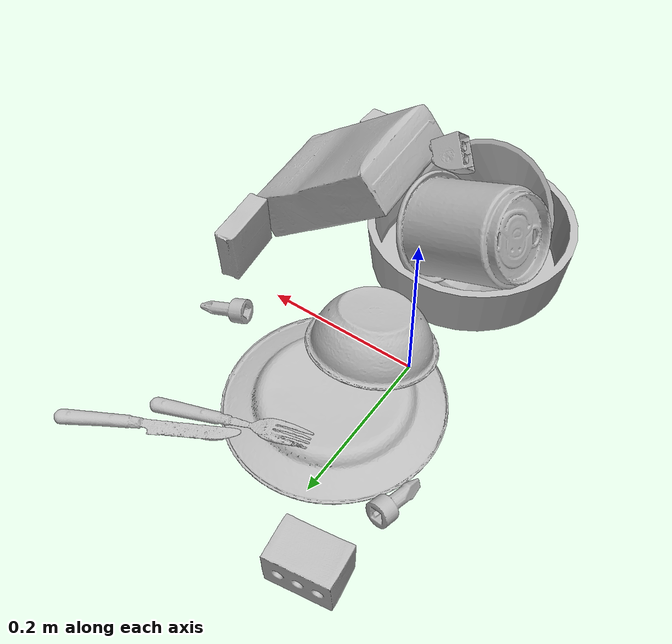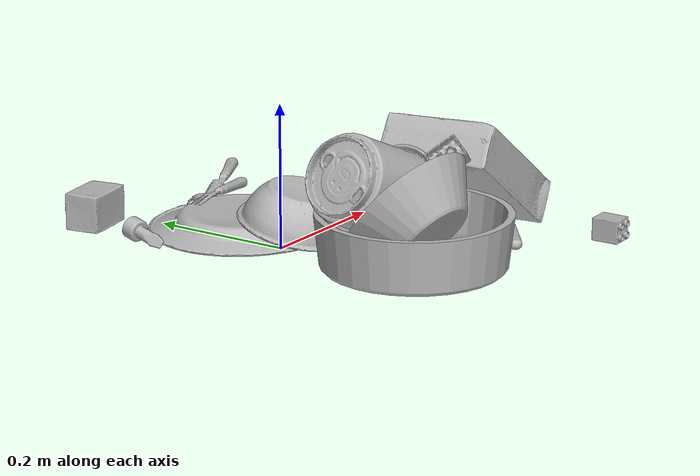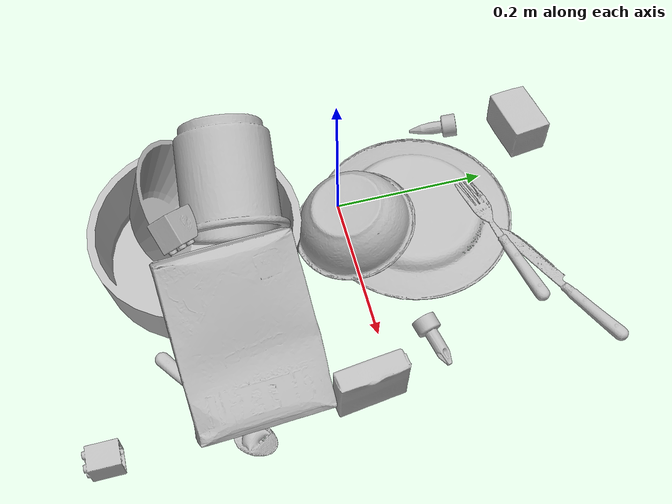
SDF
<sdf version="1.4">
  <world name="default">
    <light name="light1" type="point">
      <pose>0 0 1 0 0 0</pose>
      <diffuse>3 3 3 1</diffuse>
      <specular>3 3 3 1</specular>
    </light>
    <light name="light2" type="point">
      <pose>0 0.5 2 0 0 0</pose>
      <diffuse>1 1 1 1</diffuse>
      <specular>1 1 1 1</specular>
    </light>
    <light name="light3" type="point">
      <pose>0 0.5 2 0 0 0</pose>
      <diffuse>3 3 3 1</diffuse>
      <specular>3 3 3 1</specular>
    </light>
    <scene>
      <ambient>0.7 0.7 0.7</ambient>
    </scene>
    <model name="plate1">
      <link name="link_plate1">
        <collision name="default">
          <geometry>
            <mesh>
              <uri>model://plate/collision_meshes/collision.obj</uri>
              <scale>1.0 1.0 1.0</scale>
            </mesh>
          </geometry>
          <surface>
            <friction>
              <ode>
                <mu>0.5</mu>
                <mu2>0.5</mu2>
              </ode>
            </friction>
          <contact>
        <ode>
            <max_vel>0</max_vel>
            <min_depth>0.0001</min_depth>
            <kp>1e8</kp>
        </ode>
    </contact></surface>
        </collision>
        <visual name="default">
          <geometry>
            <mesh>
              <uri>model://plate/visual_meshes/visual.dae</uri>
              <scale>1.0 1.0 1.0</scale>
            </mesh>
          </geometry>
        </visual>
        <inertial>
          <mass>0.20059238374233246</mass>
          <pose>-0.0006044621695764363 0.00027825910365208983 -0.001056200242601335 0.002218800652723057 -0.0032254723094637602 0.45260588699646775</pose>
          <inertia>
            <ixx>0.00093837525</ixx>
            <iyy>0.0009294</iyy>
            <izz>0.0018353215</izz>
            <ixy>0</ixy>
            <ixz>0</ixz>
            <iyz>0</iyz>
          </inertia>
        </inertial>
      </link>
      <pose>0.04182807728648186 0.09362383931875229 0.013448403216898441 3.141423309416076 -0.0031622510503943914 2.799403509779532</pose>
    </model>
    <model name="plate2">
      <link name="link_plate2">
        <collision name="default">
          <geometry>
            <mesh>
              <uri>model://pan_tefal/collision_meshes/collision.obj</uri>
              <scale>1.0 1.0 1.0</scale>
            </mesh>
          </geometry>
          <surface>
            <friction>
              <ode>
                <mu>0.5</mu>
                <mu2>0.5</mu2>
              </ode>
            </friction>
          <contact>
        <ode>
            <max_vel>0</max_vel>
            <min_depth>0.0001</min_depth>
            <kp>1e8</kp>
        </ode>
    </contact></surface>
        </collision>
        <visual name="default">
          <geometry>
            <mesh>
              <uri>model://pan_tefal/visual_meshes/visual.dae</uri>
              <scale>1.0 1.0 1.0</scale>
            </mesh>
          </geometry>
        </visual>
        <inertial>
          <mass>0.5801199674606323</mass>
          <pose>-0.00018002555589191616 3.279062366345897e-05 -0.008514936082065105 0.0008190222895173471 -0.0003301392673675887 -0.3318501085377774</pose>
          <inertia>
            <ixx>0.00400454</ixx>
            <iyy>0.004030358</iyy>
            <izz>0.0073715877</izz>
            <ixy>0</ixy>
            <ixz>0</ixz>
            <iyz>0</iyz>
          </inertia>
        </inertial>
      </link>
      <pose>0.0331190824508667 -0.19128473103046417 0.038050368428230286 -2.477377125782189e-06 -4.6458421439802845e-06 1.159804381565598</pose>
    </model>
    <model name="bowl1">
      <link name="link_bowl1">
        <collision name="default">
          <geometry>
            <mesh>
              <uri>model://bowl/collision_meshes/collision.obj</uri>
              <scale>1.0 1.0 1.0</scale>
            </mesh>
          </geometry>
          <surface>
            <friction>
              <ode>
                <mu>0.5</mu>
                <mu2>0.5</mu2>
              </ode>
            </friction>
          <contact>
        <ode>
            <max_vel>0</max_vel>
            <min_depth>0.0001</min_depth>
            <kp>1e8</kp>
        </ode>
    </contact></surface>
        </collision>
        <visual name="default">
          <geometry>
            <mesh>
              <uri>model://bowl/visual_meshes/visual.dae</uri>
              <scale>1.0 1.0 1.0</scale>
            </mesh>
          </geometry>
        </visual>
        <inertial>
          <mass>0.055578216910362244</mass>
          <pose>0.00020445502013899386 -0.0010302060982212424 -0.000804265437182039 -0.015764048263850368 0.014546844804774466 0.7140432473852318</pose>
          <inertia>
            <ixx>0.00012766755</ixx>
            <iyy>0.000124815</iyy>
            <izz>0.00021478078</izz>
            <ixy>0</ixy>
            <ixz>0</ixz>
            <iyz>0</iyz>
          </inertia>
        </inertial>
      </link>
      <pose>0.04787202179431915 0.004264296032488346 0.044411659240722656 2.9932645385161667 -0.17039773320746995 2.4080824467276836</pose>
    </model>
    <model name="bowl2">
      <link name="link_bowl2">
        <collision name="default">
          <geometry>
            <mesh>
              <uri>model://bowl_a/collision_meshes/collision.obj</uri>
              <scale>1.0 1.0 1.0</scale>
            </mesh>
          </geometry>
          <surface>
            <friction>
              <ode>
                <mu>0.5</mu>
                <mu2>0.5</mu2>
              </ode>
            </friction>
          <contact>
        <ode>
            <max_vel>0</max_vel>
            <min_depth>0.0001</min_depth>
            <kp>1e8</kp>
        </ode>
    </contact></surface>
        </collision>
        <visual name="default">
          <geometry>
            <mesh>
              <uri>model://bowl_a/visual_meshes/visual.dae</uri>
              <scale>1.0 1.0 1.0</scale>
            </mesh>
          </geometry>
        </visual>
        <inertial>
          <mass>0.31475314497947693</mass>
          <pose>0.00027867438620887697 4.730821092380211e-05 -0.0013765294570475817 -0.0009805369688078041 -0.0010938258688624044 -0.19123886294168949</pose>
          <inertia>
            <ixx>0.00089611666</ixx>
            <iyy>0.00090161816</iyy>
            <izz>0.0015937777</izz>
            <ixy>0</ixy>
            <ixz>0</ixz>
            <iyz>0</iyz>
          </inertia>
        </inertial>
      </link>
      <pose>0.019688410684466362 -0.20779991149902344 0.07076812535524368 -0.5611053274044023 0.7564029324080831 0.702711999862798</pose>
    </model>
    <model name="silverware1">
      <link name="link_silverware1">
        <collision name="default">
          <geometry>
            <mesh>
              <uri>model://spoon/collision_meshes/collision.obj</uri>
              <scale>1.0 1.0 1.0</scale>
            </mesh>
          </geometry>
          <surface>
            <friction>
              <ode>
                <mu>0.5</mu>
                <mu2>0.5</mu2>
              </ode>
            </friction>
          <contact>
        <ode>
            <max_vel>0</max_vel>
            <min_depth>0.0001</min_depth>
            <kp>1e8</kp>
        </ode>
    </contact></surface>
        </collision>
        <visual name="default">
          <geometry>
            <mesh>
              <uri>model://spoon/visual_meshes/visual.dae</uri>
              <scale>1.0 1.0 1.0</scale>
            </mesh>
          </geometry>
        </visual>
        <inertial>
          <mass>0.019504988566040993</mass>
          <pose>-0.005526313092559576 -0.0016034174477681518 -0.0007271654321812093 0.03521671064592188 -0.039065845080026425 0.006150613244710899</pose>
          <inertia>
            <ixx>1.0848988e-06</ixx>
            <iyy>7.421582e-05</iyy>
            <izz>7.4750846e-05</izz>
            <ixy>0</ixy>
            <ixz>0</ixz>
            <iyz>0</iyz>
          </inertia>
        </inertial>
      </link>
      <pose>0.24387401342391968 -0.21116666495800018 0.008380514569580555 -0.07115483380426597 0.02568442582227173 0.5993512184812075</pose>
    </model>
    <model name="box1">
      <link name="link_box1">
        <collision name="default">
          <geometry>
            <mesh>
              <uri>model://cracker_box/collision_meshes/collision.obj</uri>
              <scale>1.0 1.0 1.0</scale>
            </mesh>
          </geometry>
          <surface>
            <friction>
              <ode>
                <mu>0.5</mu>
                <mu2>0.5</mu2>
              </ode>
            </friction>
          <contact>
        <ode>
            <max_vel>0</max_vel>
            <min_depth>0.0001</min_depth>
            <kp>1e8</kp>
        </ode>
    </contact></surface>
        </collision>
        <visual name="default">
          <geometry>
            <mesh>
              <uri>model://cracker_box/visual_meshes/visual.dae</uri>
              <scale>1.0 1.0 1.0</scale>
            </mesh>
          </geometry>
        </visual>
        <inertial>
          <mass>2.5078790187835693</mass>
          <pose>0.0009464150061830878 0.00025434247800149024 -0.0017029535956680775 -0.00031620768203149627 -0.01110648960041945 0.002546794303792924</pose>
          <inertia>
            <ixx>0.0063789245</ixx>
            <iyy>0.010532858</iyy>
            <izz>0.015031353</izz>
            <ixy>0</ixy>
            <ixz>0</ixz>
            <iyz>0</iyz>
          </inertia>
        </inertial>
      </link>
      <pose>0.20618818700313568 -0.16290907561779022 0.09056717902421951 0.034334194497467656 -0.6063919346163048 -3.091261780785426</pose>
    </model>
    <model name="box2">
      <link name="link_box2">
        <collision name="default">
          <geometry>
            <mesh>
              <uri>model://gelatin_box/collision_meshes/collision.obj</uri>
              <scale>1.0 1.0 1.0</scale>
            </mesh>
          </geometry>
          <surface>
            <friction>
              <ode>
                <mu>0.5</mu>
                <mu2>0.5</mu2>
              </ode>
            </friction>
          <contact>
        <ode>
            <max_vel>0</max_vel>
            <min_depth>0.0001</min_depth>
            <kp>1e8</kp>
        </ode>
    </contact></surface>
        </collision>
        <visual name="default">
          <geometry>
            <mesh>
              <uri>model://gelatin_box/visual_meshes/visual.dae</uri>
              <scale>1.0 1.0 1.0</scale>
            </mesh>
          </geometry>
        </visual>
        <inertial>
          <mass>0.1847851723432541</mass>
          <pose>0.0004319618456065655 0.00011156872642459348 -0.0003640321083366871 -0.001050372098056681 -0.004755818221834168 0.016440563197305347</pose>
          <inertia>
            <ixx>0.00013044327</ixx>
            <iyy>9.317494e-05</iyy>
            <izz>0.0001985637</izz>
            <ixy>0</ixy>
            <ixz>0</ixz>
            <iyz>0</iyz>
          </inertia>
        </inertial>
      </link>
      <pose>0.27800536155700684 -0.03132499381899834 0.03644856810569763 2.296338073834495 -1.5392901111720418 0.9817562059845771</pose>
    </model>
    <model name="cup1">
      <link name="link_cup1">
        <collision name="default">
          <geometry>
            <mesh>
              <uri>model://d_cups/collision_meshes/collision.obj</uri>
              <scale>2.0 2.0 2.0</scale>
            </mesh>
          </geometry>
          <surface>
            <friction>
              <ode>
                <mu>0.5</mu>
                <mu2>0.5</mu2>
              </ode>
            </friction>
          <contact>
        <ode>
            <max_vel>0</max_vel>
            <min_depth>0.0001</min_depth>
            <kp>1e8</kp>
        </ode>
    </contact></surface>
        </collision>
        <visual name="default">
          <geometry>
            <mesh>
              <uri>model://d_cups/visual_meshes/visual.dae</uri>
              <scale>2.0 2.0 2.0</scale>
            </mesh>
          </geometry>
        </visual>
        <inertial>
          <mass>0.47328615188598633</mass>
          <pose>0.0016136143822222948 0.0038234798703342676 -0.004533303435891867 0.24012870248045765 -0.247092443015796 0.5942312682521343</pose>
          <inertia>
            <ixx>0.0015850074</ixx>
            <iyy>0.0015804201</iyy>
            <izz>0.0014347013</izz>
            <ixy>0</ixy>
            <ixz>0</ixz>
            <iyz>0</iyz>
          </inertia>
        </inertial>
      </link>
      <pose>0.0008873074548318982 -0.14047014713287354 0.10991354286670685 2.0074541395619816 0.07771387976262842 1.5027533170564553</pose>
    </model>
    <model name="silverware2">
      <link name="link_silverware2">
        <collision name="default">
          <geometry>
            <mesh>
              <uri>model://knife/collision_meshes/collision.obj</uri>
              <scale>1.0 1.0 1.0</scale>
            </mesh>
          </geometry>
          <surface>
            <friction>
              <ode>
                <mu>0.5</mu>
                <mu2>0.5</mu2>
              </ode>
            </friction>
          <contact>
        <ode>
            <max_vel>0</max_vel>
            <min_depth>0.0001</min_depth>
            <kp>1e8</kp>
        </ode>
    </contact></surface>
        </collision>
        <visual name="default">
          <geometry>
            <mesh>
              <uri>model://knife/visual_meshes/visual.dae</uri>
              <scale>1.0 1.0 1.0</scale>
            </mesh>
          </geometry>
        </visual>
        <inertial>
          <mass>0.03430156037211418</mass>
          <pose>-0.02378525398671627 0.0015275129117071629 5.062017953605391e-05 0.07305950900181668 0.01724842494985857 -0.007409825116106198</pose>
          <inertia>
            <ixx>9.736174e-07</ixx>
            <iyy>0.00013178105</iyy>
            <izz>0.00013209462</izz>
            <ixy>0</ixy>
            <ixz>0</ixz>
            <iyz>0</iyz>
          </inertia>
        </inertial>
      </link>
      <pose>0.19127263128757477 0.244649738073349 0.009434746578335762 0.025159085757158868 -0.031145601803400414 -2.661043300352022</pose>
    </model>
    <model name="silverware3">
      <link name="link_silverware3">
        <collision name="default">
          <geometry>
            <mesh>
              <uri>model://fork/collision_meshes/collision.obj</uri>
              <scale>1.0 1.0 1.0</scale>
            </mesh>
          </geometry>
          <surface>
            <friction>
              <ode>
                <mu>0.5</mu>
                <mu2>0.5</mu2>
              </ode>
            </friction>
          <contact>
        <ode>
            <max_vel>0</max_vel>
            <min_depth>0.0001</min_depth>
            <kp>1e8</kp>
        </ode>
    </contact></surface>
        </collision>
        <visual name="default">
          <geometry>
            <mesh>
              <uri>model://fork/visual_meshes/visual.dae</uri>
              <scale>1.0 1.0 1.0</scale>
            </mesh>
          </geometry>
        </visual>
        <inertial>
          <mass>0.014111565425992012</mass>
          <pose>-0.02957005426287651 0.0004658825055230409 0.00032188615296036005 -0.01355195006397287 -0.010977841645129428 0.014453906946454091</pose>
          <inertia>
            <ixx>4.9469025e-07</ixx>
            <iyy>3.684124e-05</iyy>
            <izz>3.7062495e-05</izz>
            <ixy>0</ixy>
            <ixz>0</ixz>
            <iyz>0</iyz>
          </inertia>
        </inertial>
      </link>
      <pose>0.11645994335412979 0.19077061116695404 0.020131992176175117 -3.070167380198738 -0.14673095002893966 -2.8600131947789884</pose>
    </model>
    <model name="toy1">
      <link name="link_toy1">
        <collision name="default">
          <geometry>
            <mesh>
              <uri>model://b_lego_duplo/collision_meshes/collision.obj</uri>
              <scale>1.0 1.0 1.0</scale>
            </mesh>
          </geometry>
          <surface>
            <friction>
              <ode>
                <mu>0.5</mu>
                <mu2>0.5</mu2>
              </ode>
            </friction>
          <contact>
        <ode>
            <max_vel>0</max_vel>
            <min_depth>0.0001</min_depth>
            <kp>1e8</kp>
        </ode>
    </contact></surface>
        </collision>
        <visual name="default">
          <geometry>
            <mesh>
              <uri>model://b_lego_duplo/visual_meshes/visual.dae</uri>
              <scale>1.0 1.0 1.0</scale>
            </mesh>
          </geometry>
        </visual>
        <inertial>
          <mass>0.029451588168740273</mass>
          <pose>-0.00011053002526750788 -9.152366146736313e-06 0.0019294293597340584 -0.03749525813168218 -0.026353287435260622 0.45191626186006195</pose>
          <inertia>
            <ixx>6.0274892e-06</ixx>
            <iyy>6.0680068e-06</iyy>
            <izz>5.3702943e-06</izz>
            <ixy>0</ixy>
            <ixz>0</ixz>
            <iyz>0</iyz>
          </inertia>
        </inertial>
      </link>
      <pose>0.2836225926876068 -0.3478487432003021 0.01612117700278759 1.5723700770823361 -0.012009785480234417 0.00836730690124678</pose>
    </model>
    <model name="toy2">
      <link name="link_toy2">
        <collision name="default">
          <geometry>
            <mesh>
              <uri>model://foam_brick/collision_meshes/collision.obj</uri>
              <scale>1.0 1.0 1.0</scale>
            </mesh>
          </geometry>
          <surface>
            <friction>
              <ode>
                <mu>0.5</mu>
                <mu2>0.5</mu2>
              </ode>
            </friction>
          <contact>
        <ode>
            <max_vel>0</max_vel>
            <min_depth>0.0001</min_depth>
            <kp>1e8</kp>
        </ode>
    </contact></surface>
        </collision>
        <visual name="default">
          <geometry>
            <mesh>
              <uri>model://foam_brick/visual_meshes/visual.dae</uri>
              <scale>1.0 1.0 1.0</scale>
            </mesh>
          </geometry>
        </visual>
        <inertial>
          <mass>0.2443593144416809</mass>
          <pose>-0.0002522472059354186 0.00034584393142722547 -0.0002532101352699101 -0.2940184651969868 0.017274440266988163 -0.0007449890747987857</pose>
          <inertia>
            <ixx>0.00010674072</ixx>
            <iyy>0.00017041703</iyy>
            <izz>0.00017258283</izz>
            <ixy>0</ixy>
            <ixz>0</ixz>
            <iyz>0</iyz>
          </inertia>
        </inertial>
      </link>
      <pose>-0.0586889386177063 0.2734187841415405 0.02591070532798767 1.582820835102223 -0.00037587630282078904 -2.9821209984373644</pose>
    </model>
    <model name="toy3">
      <link name="link_toy3">
        <collision name="default">
          <geometry>
            <mesh>
              <uri>model://d_lego_duplo/collision_meshes/collision.obj</uri>
              <scale>1.0 1.0 1.0</scale>
            </mesh>
          </geometry>
          <surface>
            <friction>
              <ode>
                <mu>0.5</mu>
                <mu2>0.5</mu2>
              </ode>
            </friction>
          <contact>
        <ode>
            <max_vel>0</max_vel>
            <min_depth>0.0001</min_depth>
            <kp>1e8</kp>
        </ode>
    </contact></surface>
        </collision>
        <visual name="default">
          <geometry>
            <mesh>
              <uri>model://d_lego_duplo/visual_meshes/visual.dae</uri>
              <scale>1.0 1.0 1.0</scale>
            </mesh>
          </geometry>
        </visual>
        <inertial>
          <mass>0.033699363470077515</mass>
          <pose>0.002830563113093376 0.0001636613014852628 0.0008589802891947329 0.08010879334546937 -0.38355231252286476 0.0010296922462193392</pose>
          <inertia>
            <ixx>6.5236977e-06</ixx>
            <iyy>9.258897e-06</iyy>
            <izz>8.928908e-06</izz>
            <ixy>0</ixy>
            <ixz>0</ixz>
            <iyz>0</iyz>
          </inertia>
        </inertial>
      </link>
      <pose>0.08188871294260025 -0.21102465689182281 0.14067506790161133 -2.2437555566592486 -0.5847438090197737 -0.7819579064122509</pose>
    </model>
    <model name="toy4">
      <link name="link_toy4">
        <collision name="default">
          <geometry>
            <mesh>
              <uri>model://d_toy_airplane/collision_meshes/collision.obj</uri>
              <scale>1.0 1.0 1.0</scale>
            </mesh>
          </geometry>
          <surface>
            <friction>
              <ode>
                <mu>0.5</mu>
                <mu2>0.5</mu2>
              </ode>
            </friction>
          <contact>
        <ode>
            <max_vel>0</max_vel>
            <min_depth>0.0001</min_depth>
            <kp>1e8</kp>
        </ode>
    </contact></surface>
        </collision>
        <visual name="default">
          <geometry>
            <mesh>
              <uri>model://d_toy_airplane/visual_meshes/visual.dae</uri>
              <scale>1.0 1.0 1.0</scale>
            </mesh>
          </geometry>
        </visual>
        <inertial>
          <mass>0.016584575176239014</mass>
          <pose>9.410303027834743e-05 -5.809338472317904e-05 -0.01172809861600399 0.0002669776058846709 0.004678969238403601 0.5194647440200774</pose>
          <inertia>
            <ixx>4.9717323e-06</ixx>
            <iyy>4.975482e-06</iyy>
            <izz>1.5009987e-06</izz>
            <ixy>0</ixy>
            <ixz>0</ixz>
            <iyz>0</iyz>
          </inertia>
        </inertial>
      </link>
      <pose>0.23295541107654572 0.06428539752960205 0.01136124785989523 -2.301796993189618 1.2476197574923331 -2.0080448418141863</pose>
    </model>
    <model name="toy5">
      <link name="link_toy5">
        <collision name="default">
          <geometry>
            <mesh>
              <uri>model://e_toy_airplane/collision_meshes/collision.obj</uri>
              <scale>1.0 1.0 1.0</scale>
            </mesh>
          </geometry>
          <surface>
            <friction>
              <ode>
                <mu>0.5</mu>
                <mu2>0.5</mu2>
              </ode>
            </friction>
          <contact>
        <ode>
            <max_vel>0</max_vel>
            <min_depth>0.0001</min_depth>
            <kp>1e8</kp>
        </ode>
    </contact></surface>
        </collision>
        <visual name="default">
          <geometry>
            <mesh>
              <uri>model://e_toy_airplane/visual_meshes/visual.dae</uri>
              <scale>1.0 1.0 1.0</scale>
            </mesh>
          </geometry>
        </visual>
        <inertial>
          <mass>0.01714155077934265</mass>
          <pose>0.00011740483023459092 -2.2482887288788334e-05 -0.011187203228473663 0.005518467343725363 0.009228313895921611 0.15041273076279138</pose>
          <inertia>
            <ixx>5.2317982e-06</ixx>
            <iyy>5.178279e-06</iyy>
            <izz>1.5723607e-06</izz>
            <ixy>0</ixy>
            <ixz>0</ixz>
            <iyz>0</iyz>
          </inertia>
        </inertial>
      </link>
      <pose>-0.0877058207988739 0.15997231006622314 0.012219122610986233 -1.7882528231362356 -0.6009538098661423 3.0721697775470167</pose>
    </model>
  <physics type="ode">
      <max_contacts>50</max_contacts>
      <ode>
        <solver>
          <type>quick</type>
          <iters>75</iters>
        </solver>
        <constraints>
          <contact_max_correcting_vel>0</contact_max_correcting_vel>
          <contact_surface_layer>0</contact_surface_layer>
        </constraints>
      </ode>
    </physics></world>
</sdf>
